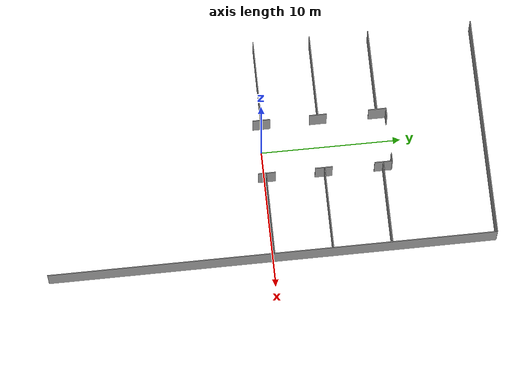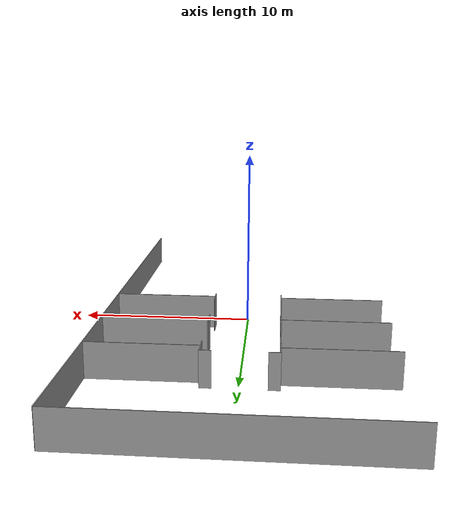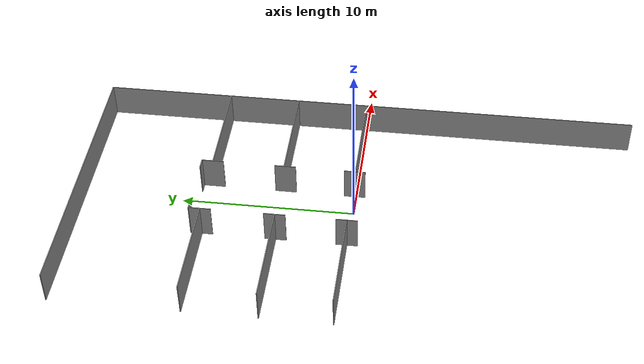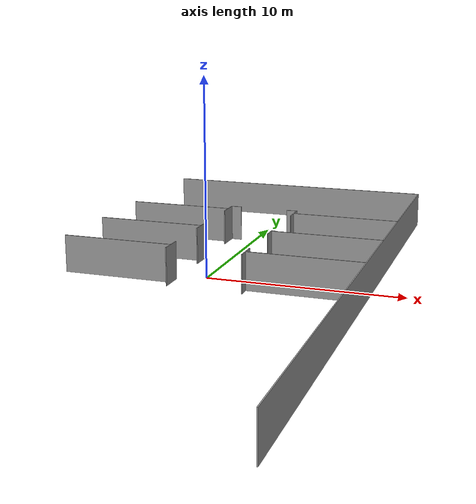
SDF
<sdf version="1.6">
 <model name="straight_corridor">
  <link name="link_0_clone_1_clone">
   <inertial>
    <mass>1.76422</mass>
    <inertia><ixx>41.0771</ixx><ixy>0</ixy><ixz>0</ixz><iyy>0.544921</iyy><iyz>0</iyz><izz>41.6211</izz></inertia>
   </inertial>
   <pose>8 0 0.5 0 1.57051 0</pose>
   <visual name="visual">
    <geometry><box><size>2 32 0.05</size></box></geometry>
    <material>
     <lighting>1</lighting>
     <script><uri>file://media/materials/scripts/gazebo.material</uri><name>Gazebo/Grey</name></script>
     <shader type="vertex"><normal_map>__default__</normal_map></shader>
     <ambient>0.3 0.3 0.3 1</ambient>
     <diffuse>0.7 0.7 0.7 1</diffuse>
     <specular>0.01 0.01 0.01 1</specular>
     <emissive>0 0 0 1</emissive>
    </material>
   </visual>
   <collision name="collision">
    <geometry><box><size>2 32 0.05</size></box></geometry>
    <surface>
     <friction>
      <ode><mu>1</mu><mu2>1</mu2><fdir1>0 0 0</fdir1><slip1>0</slip1><slip2>0</slip2></ode>
      <torsional>
       <coefficient>1</coefficient>
       <patch_radius>0</patch_radius>
       <surface_radius>0</surface_radius>
       <use_patch_radius>1</use_patch_radius>
       <ode><slip>0</slip></ode>
      </torsional>
     </friction>
     <bounce><restitution_coefficient>0</restitution_coefficient><threshold>1e+06</threshold></bounce>
     <contact>
      <collide_without_contact>0</collide_without_contact>
      <collide_without_contact_bitmask>1</collide_without_contact_bitmask>
      <collide_bitmask>1</collide_bitmask>
      <ode>
       <soft_cfm>0</soft_cfm>
       <soft_erp>0.2</soft_erp>
       <kp>1e+13</kp>
       <kd>1</kd>
       <max_vel>0.01</max_vel>
       <min_depth>0</min_depth>
      </ode>
      <bullet>
       <split_impulse>1</split_impulse>
       <split_impulse_penetration_threshold>-0.01</split_impulse_penetration_threshold>
       <soft_cfm>0</soft_cfm>
       <soft_erp>0.2</soft_erp>
       <kp>1e+13</kp>
       <kd>1</kd>
      </bullet>
     </contact>
    </surface>
   </collision>
  </link>
  <link name="link_0_clone_clone_clone_1">
   <inertial>
    <mass>0.172458</mass>
    <inertia>
     <ixx>0.0384152</ixx>
     <ixy>0</ixy>
     <ixz>0</ixz>
     <iyy>0.0532677</iyy>
     <iyz>0</iyz>
     <izz>0.0915919</izz>
    </inertia>
   </inertial>
   <pose>2 0.1777 0.5 0 1.57066 0</pose>
   <visual name="visual">
    <geometry><box><size>2 1.25 0.05</size></box></geometry>
    <material>
     <lighting>1</lighting>
     <script><uri>file://media/materials/scripts/gazebo.material</uri><name>Gazebo/Grey</name></script>
     <shader type="pixel"><normal_map>__default__</normal_map></shader>
     <ambient>0.3 0.3 0.3 1</ambient>
     <diffuse>0.7 0.7 0.7 1</diffuse>
     <specular>0.01 0.01 0.01 1</specular>
     <emissive>0 0 0 1</emissive>
    </material>
   </visual>
   <collision name="collision">
    <geometry><box><size>2 1.25 0.05</size></box></geometry>
    <surface>
     <friction>
      <ode><mu>1</mu><mu2>1</mu2><fdir1>0 0 0</fdir1><slip1>0</slip1><slip2>0</slip2></ode>
      <torsional>
       <coefficient>1</coefficient>
       <patch_radius>0</patch_radius>
       <surface_radius>0</surface_radius>
       <use_patch_radius>1</use_patch_radius>
       <ode><slip>0</slip></ode>
      </torsional>
     </friction>
     <bounce><restitution_coefficient>0</restitution_coefficient><threshold>1e+06</threshold></bounce>
     <contact>
      <collide_without_contact>0</collide_without_contact>
      <collide_without_contact_bitmask>1</collide_without_contact_bitmask>
      <collide_bitmask>1</collide_bitmask>
      <ode>
       <soft_cfm>0</soft_cfm>
       <soft_erp>0.2</soft_erp>
       <kp>1e+13</kp>
       <kd>1</kd>
       <max_vel>0.01</max_vel>
       <min_depth>0</min_depth>
      </ode>
      <bullet>
       <split_impulse>1</split_impulse>
       <split_impulse_penetration_threshold>-0.01</split_impulse_penetration_threshold>
       <soft_cfm>0</soft_cfm>
       <soft_erp>0.2</soft_erp>
       <kp>1e+13</kp>
       <kd>1</kd>
      </bullet>
     </contact>
    </surface>
   </collision>
  </link>
  <link name="link_0_clone_clone_clone_1_clone">
   <inertial>
    <mass>0.172458</mass>
    <inertia>
     <ixx>0.0384152</ixx>
     <ixy>0</ixy>
     <ixz>0</ixz>
     <iyy>0.0532677</iyy>
     <iyz>0</iyz>
     <izz>0.0915919</izz>
    </inertia>
   </inertial>
   <pose>-2 0.17777 0.5 0 1.57051 0</pose>
   <visual name="visual">
    <geometry><box><size>2 1.25 0.05</size></box></geometry>
    <material>
     <lighting>1</lighting>
     <script><uri>file://media/materials/scripts/gazebo.material</uri><name>Gazebo/Grey</name></script>
     <shader type="pixel"><normal_map>__default__</normal_map></shader>
     <ambient>0.3 0.3 0.3 1</ambient>
     <diffuse>0.7 0.7 0.7 1</diffuse>
     <specular>0.01 0.01 0.01 1</specular>
     <emissive>0 0 0 1</emissive>
    </material>
   </visual>
   <collision name="collision">
    <geometry><box><size>2 1.25 0.05</size></box></geometry>
    <surface>
     <friction>
      <ode><mu>1</mu><mu2>1</mu2><fdir1>0 0 0</fdir1><slip1>0</slip1><slip2>0</slip2></ode>
      <torsional>
       <coefficient>1</coefficient>
       <patch_radius>0</patch_radius>
       <surface_radius>0</surface_radius>
       <use_patch_radius>1</use_patch_radius>
       <ode><slip>0</slip></ode>
      </torsional>
     </friction>
     <bounce><restitution_coefficient>0</restitution_coefficient><threshold>1e+06</threshold></bounce>
     <contact>
      <collide_without_contact>0</collide_without_contact>
      <collide_without_contact_bitmask>1</collide_without_contact_bitmask>
      <collide_bitmask>1</collide_bitmask>
      <ode>
       <soft_cfm>0</soft_cfm>
       <soft_erp>0.2</soft_erp>
       <kp>1e+13</kp>
       <kd>1</kd>
       <max_vel>0.01</max_vel>
       <min_depth>0</min_depth>
      </ode>
      <bullet>
       <split_impulse>1</split_impulse>
       <split_impulse_penetration_threshold>-0.01</split_impulse_penetration_threshold>
       <soft_cfm>0</soft_cfm>
       <soft_erp>0.2</soft_erp>
       <kp>1e+13</kp>
       <kd>1</kd>
      </bullet>
     </contact>
    </surface>
   </collision>
  </link>
  <link name="link_0_clone_clone_clone_2">
   <inertial>
    <mass>0.172458</mass>
    <inertia>
     <ixx>0.0384152</ixx>
     <ixy>0</ixy>
     <ixz>0</ixz>
     <iyy>0.0532677</iyy>
     <iyz>0</iyz>
     <izz>0.0915919</izz>
    </inertia>
   </inertial>
   <pose>2 4.26 0.5 0 1.57066 0</pose>
   <visual name="visual">
    <geometry><box><size>2 1.25 0.05</size></box></geometry>
    <material>
     <lighting>1</lighting>
     <script><uri>file://media/materials/scripts/gazebo.material</uri><name>Gazebo/Grey</name></script>
     <shader type="pixel"><normal_map>__default__</normal_map></shader>
     <ambient>0.3 0.3 0.3 1</ambient>
     <diffuse>0.7 0.7 0.7 1</diffuse>
     <specular>0.01 0.01 0.01 1</specular>
     <emissive>0 0 0 1</emissive>
    </material>
   </visual>
   <collision name="collision">
    <geometry><box><size>2 1.25 0.05</size></box></geometry>
    <surface>
     <friction>
      <ode><mu>1</mu><mu2>1</mu2><fdir1>0 0 0</fdir1><slip1>0</slip1><slip2>0</slip2></ode>
      <torsional>
       <coefficient>1</coefficient>
       <patch_radius>0</patch_radius>
       <surface_radius>0</surface_radius>
       <use_patch_radius>1</use_patch_radius>
       <ode><slip>0</slip></ode>
      </torsional>
     </friction>
     <bounce><restitution_coefficient>0</restitution_coefficient><threshold>1e+06</threshold></bounce>
     <contact>
      <collide_without_contact>0</collide_without_contact>
      <collide_without_contact_bitmask>1</collide_without_contact_bitmask>
      <collide_bitmask>1</collide_bitmask>
      <ode>
       <soft_cfm>0</soft_cfm>
       <soft_erp>0.2</soft_erp>
       <kp>1e+13</kp>
       <kd>1</kd>
       <max_vel>0.01</max_vel>
       <min_depth>0</min_depth>
      </ode>
      <bullet>
       <split_impulse>1</split_impulse>
       <split_impulse_penetration_threshold>-0.01</split_impulse_penetration_threshold>
       <soft_cfm>0</soft_cfm>
       <soft_erp>0.2</soft_erp>
       <kp>1e+13</kp>
       <kd>1</kd>
      </bullet>
     </contact>
    </surface>
   </collision>
  </link>
  <link name="link_0_clone_clone_clone_2_clone">
   <inertial>
    <mass>0.172458</mass>
    <inertia>
     <ixx>0.0384152</ixx>
     <ixy>0</ixy>
     <ixz>0</ixz>
     <iyy>0.0532677</iyy>
     <iyz>0</iyz>
     <izz>0.0915919</izz>
    </inertia>
   </inertial>
   <pose>-2 4.26666 0.5 0 1.57051 0</pose>
   <visual name="visual">
    <geometry><box><size>2 1.25 0.05</size></box></geometry>
    <material>
     <lighting>1</lighting>
     <script><uri>file://media/materials/scripts/gazebo.material</uri><name>Gazebo/Grey</name></script>
     <shader type="pixel"><normal_map>__default__</normal_map></shader>
     <ambient>0.3 0.3 0.3 1</ambient>
     <diffuse>0.7 0.7 0.7 1</diffuse>
     <specular>0.01 0.01 0.01 1</specular>
     <emissive>0 0 0 1</emissive>
    </material>
   </visual>
   <collision name="collision">
    <geometry><box><size>2 1.25 0.05</size></box></geometry>
    <surface>
     <friction>
      <ode><mu>1</mu><mu2>1</mu2><fdir1>0 0 0</fdir1><slip1>0</slip1><slip2>0</slip2></ode>
      <torsional>
       <coefficient>1</coefficient>
       <patch_radius>0</patch_radius>
       <surface_radius>0</surface_radius>
       <use_patch_radius>1</use_patch_radius>
       <ode><slip>0</slip></ode>
      </torsional>
     </friction>
     <bounce><restitution_coefficient>0</restitution_coefficient><threshold>1e+06</threshold></bounce>
     <contact>
      <collide_without_contact>0</collide_without_contact>
      <collide_without_contact_bitmask>1</collide_without_contact_bitmask>
      <collide_bitmask>1</collide_bitmask>
      <ode>
       <soft_cfm>0</soft_cfm>
       <soft_erp>0.2</soft_erp>
       <kp>1e+13</kp>
       <kd>1</kd>
       <max_vel>0.01</max_vel>
       <min_depth>0</min_depth>
      </ode>
      <bullet>
       <split_impulse>1</split_impulse>
       <split_impulse_penetration_threshold>-0.01</split_impulse_penetration_threshold>
       <soft_cfm>0</soft_cfm>
       <soft_erp>0.2</soft_erp>
       <kp>1e+13</kp>
       <kd>1</kd>
      </bullet>
     </contact>
    </surface>
   </collision>
  </link>
  <link name="link_0_clone_clone_clone_3">
   <inertial>
    <mass>0.172458</mass>
    <inertia>
     <ixx>0.0384152</ixx>
     <ixy>0</ixy>
     <ixz>0</ixz>
     <iyy>0.0532677</iyy>
     <iyz>0</iyz>
     <izz>0.0915919</izz>
    </inertia>
   </inertial>
   <pose>2 8.53 0.5 0 1.57066 0</pose>
   <visual name="visual">
    <geometry><box><size>2 1.25 0.05</size></box></geometry>
    <material>
     <lighting>1</lighting>
     <script><uri>file://media/materials/scripts/gazebo.material</uri><name>Gazebo/Grey</name></script>
     <shader type="pixel"><normal_map>__default__</normal_map></shader>
     <ambient>0.3 0.3 0.3 1</ambient>
     <diffuse>0.7 0.7 0.7 1</diffuse>
     <specular>0.01 0.01 0.01 1</specular>
     <emissive>0 0 0 1</emissive>
    </material>
   </visual>
   <collision name="collision">
    <geometry><box><size>2 1.25 0.05</size></box></geometry>
    <surface>
     <friction>
      <ode><mu>1</mu><mu2>1</mu2><fdir1>0 0 0</fdir1><slip1>0</slip1><slip2>0</slip2></ode>
      <torsional>
       <coefficient>1</coefficient>
       <patch_radius>0</patch_radius>
       <surface_radius>0</surface_radius>
       <use_patch_radius>1</use_patch_radius>
       <ode><slip>0</slip></ode>
      </torsional>
     </friction>
     <bounce><restitution_coefficient>0</restitution_coefficient><threshold>1e+06</threshold></bounce>
     <contact>
      <collide_without_contact>0</collide_without_contact>
      <collide_without_contact_bitmask>1</collide_without_contact_bitmask>
      <collide_bitmask>1</collide_bitmask>
      <ode>
       <soft_cfm>0</soft_cfm>
       <soft_erp>0.2</soft_erp>
       <kp>1e+13</kp>
       <kd>1</kd>
       <max_vel>0.01</max_vel>
       <min_depth>0</min_depth>
      </ode>
      <bullet>
       <split_impulse>1</split_impulse>
       <split_impulse_penetration_threshold>-0.01</split_impulse_penetration_threshold>
       <soft_cfm>0</soft_cfm>
       <soft_erp>0.2</soft_erp>
       <kp>1e+13</kp>
       <kd>1</kd>
      </bullet>
     </contact>
    </surface>
   </collision>
  </link>
  <link name="link_0_clone_clone_clone_3_clone">
   <inertial>
    <mass>0.172458</mass>
    <inertia>
     <ixx>0.0384152</ixx>
     <ixy>0</ixy>
     <ixz>0</ixz>
     <iyy>0.0532677</iyy>
     <iyz>0</iyz>
     <izz>0.0915919</izz>
    </inertia>
   </inertial>
   <pose>-2 8.53 0.5 0 1.57051 0</pose>
   <visual name="visual">
    <geometry><box><size>2 1.25 0.05</size></box></geometry>
    <material>
     <lighting>1</lighting>
     <script><uri>file://media/materials/scripts/gazebo.material</uri><name>Gazebo/Grey</name></script>
     <shader type="pixel"><normal_map>__default__</normal_map></shader>
     <ambient>0.3 0.3 0.3 1</ambient>
     <diffuse>0.7 0.7 0.7 1</diffuse>
     <specular>0.01 0.01 0.01 1</specular>
     <emissive>0 0 0 1</emissive>
    </material>
   </visual>
   <collision name="collision">
    <geometry><box><size>2 1.25 0.05</size></box></geometry>
    <surface>
     <friction>
      <ode><mu>1</mu><mu2>1</mu2><fdir1>0 0 0</fdir1><slip1>0</slip1><slip2>0</slip2></ode>
      <torsional>
       <coefficient>1</coefficient>
       <patch_radius>0</patch_radius>
       <surface_radius>0</surface_radius>
       <use_patch_radius>1</use_patch_radius>
       <ode><slip>0</slip></ode>
      </torsional>
     </friction>
     <bounce><restitution_coefficient>0</restitution_coefficient><threshold>1e+06</threshold></bounce>
     <contact>
      <collide_without_contact>0</collide_without_contact>
      <collide_without_contact_bitmask>1</collide_without_contact_bitmask>
      <collide_bitmask>1</collide_bitmask>
      <ode>
       <soft_cfm>0</soft_cfm>
       <soft_erp>0.2</soft_erp>
       <kp>1e+13</kp>
       <kd>1</kd>
       <max_vel>0.01</max_vel>
       <min_depth>0</min_depth>
      </ode>
      <bullet>
       <split_impulse>1</split_impulse>
       <split_impulse_penetration_threshold>-0.01</split_impulse_penetration_threshold>
       <soft_cfm>0</soft_cfm>
       <soft_erp>0.2</soft_erp>
       <kp>1e+13</kp>
       <kd>1</kd>
      </bullet>
     </contact>
    </surface>
   </collision>
  </link>
  <link name="link_0_clone_clone_clone_4_clone_0">
   <inertial>
    <mass>0.172458</mass>
    <inertia>
     <ixx>0.0384152</ixx>
     <ixy>0</ixy>
     <ixz>0</ixz>
     <iyy>0.0532677</iyy>
     <iyz>0</iyz>
     <izz>0.0915919</izz>
    </inertia>
   </inertial>
   <pose>1.71515 9.17973 0.500215 -1.5708 1.57051 0</pose>
   <visual name="visual">
    <geometry><box><size>2 0.625 0.05</size></box></geometry>
    <material>
     <lighting>1</lighting>
     <script><uri>file://media/materials/scripts/gazebo.material</uri><name>Gazebo/Grey</name></script>
     <shader type="pixel"><normal_map>__default__</normal_map></shader>
     <ambient>0.3 0.3 0.3 1</ambient>
     <diffuse>0.7 0.7 0.7 1</diffuse>
     <specular>0.01 0.01 0.01 1</specular>
     <emissive>0 0 0 1</emissive>
    </material>
   </visual>
   <collision name="collision">
    <geometry><box><size>2 0.625 0.05</size></box></geometry>
    <surface>
     <friction>
      <ode><mu>1</mu><mu2>1</mu2><fdir1>0 0 0</fdir1><slip1>0</slip1><slip2>0</slip2></ode>
      <torsional>
       <coefficient>1</coefficient>
       <patch_radius>0</patch_radius>
       <surface_radius>0</surface_radius>
       <use_patch_radius>1</use_patch_radius>
       <ode><slip>0</slip></ode>
      </torsional>
     </friction>
     <bounce><restitution_coefficient>0</restitution_coefficient><threshold>1e+06</threshold></bounce>
     <contact>
      <collide_without_contact>0</collide_without_contact>
      <collide_without_contact_bitmask>1</collide_without_contact_bitmask>
      <collide_bitmask>1</collide_bitmask>
      <ode>
       <soft_cfm>0</soft_cfm>
       <soft_erp>0.2</soft_erp>
       <kp>1e+13</kp>
       <kd>1</kd>
       <max_vel>0.01</max_vel>
       <min_depth>0</min_depth>
      </ode>
      <bullet>
       <split_impulse>1</split_impulse>
       <split_impulse_penetration_threshold>-0.01</split_impulse_penetration_threshold>
       <soft_cfm>0</soft_cfm>
       <soft_erp>0.2</soft_erp>
       <kp>1e+13</kp>
       <kd>1</kd>
      </bullet>
     </contact>
    </surface>
   </collision>
  </link>
  <link name="link_0_clone_clone_clone_4_clone_clone">
   <inertial>
    <mass>0.172458</mass>
    <inertia>
     <ixx>0.0384152</ixx>
     <ixy>0</ixy>
     <ixz>0</ixz>
     <iyy>0.0532677</iyy>
     <iyz>0</iyz>
     <izz>0.0915919</izz>
    </inertia>
   </inertial>
   <pose>-1.71368 9.17676 0.499824 1.5708 1.57039 -0</pose>
   <visual name="visual">
    <geometry><box><size>2 0.625 0.05</size></box></geometry>
    <material>
     <lighting>1</lighting>
     <script><uri>file://media/materials/scripts/gazebo.material</uri><name>Gazebo/Grey</name></script>
     <shader type="pixel"><normal_map>__default__</normal_map></shader>
     <ambient>0.3 0.3 0.3 1</ambient>
     <diffuse>0.7 0.7 0.7 1</diffuse>
     <specular>0.01 0.01 0.01 1</specular>
     <emissive>0 0 0 1</emissive>
    </material>
   </visual>
   <collision name="collision">
    <geometry><box><size>2 0.625 0.05</size></box></geometry>
    <surface>
     <friction>
      <ode><mu>1</mu><mu2>1</mu2><fdir1>0 0 0</fdir1><slip1>0</slip1><slip2>0</slip2></ode>
      <torsional>
       <coefficient>1</coefficient>
       <patch_radius>0</patch_radius>
       <surface_radius>0</surface_radius>
       <use_patch_radius>1</use_patch_radius>
       <ode><slip>0</slip></ode>
      </torsional>
     </friction>
     <bounce><restitution_coefficient>0</restitution_coefficient><threshold>1e+06</threshold></bounce>
     <contact>
      <collide_without_contact>0</collide_without_contact>
      <collide_without_contact_bitmask>1</collide_without_contact_bitmask>
      <collide_bitmask>1</collide_bitmask>
      <ode>
       <soft_cfm>0</soft_cfm>
       <soft_erp>0.2</soft_erp>
       <kp>1e+13</kp>
       <kd>1</kd>
       <max_vel>0.01</max_vel>
       <min_depth>0</min_depth>
      </ode>
      <bullet>
       <split_impulse>1</split_impulse>
       <split_impulse_penetration_threshold>-0.01</split_impulse_penetration_threshold>
       <soft_cfm>0</soft_cfm>
       <soft_erp>0.2</soft_erp>
       <kp>1e+13</kp>
       <kd>1</kd>
      </bullet>
     </contact>
    </surface>
   </collision>
  </link>
  <link name="link_0_clone_clone_clone_clone">
   <inertial>
    <mass>1.76422</mass>
    <inertia><ixx>41.0771</ixx><ixy>0</ixy><ixz>0</ixz><iyy>0.544921</iyy><iyz>0</iyz><izz>41.6211</izz></inertia>
   </inertial>
   <pose>0 16 0.5 -1.58027 1.57079 3.13212</pose>
   <visual name="visual">
    <geometry><box><size>2 16 0.05</size></box></geometry>
    <material>
     <lighting>1</lighting>
     <script><uri>file://media/materials/scripts/gazebo.material</uri><name>Gazebo/Grey</name></script>
     <shader type="pixel"><normal_map>__default__</normal_map></shader>
     <ambient>0.3 0.3 0.3 1</ambient>
     <diffuse>0.7 0.7 0.7 1</diffuse>
     <specular>0.01 0.01 0.01 1</specular>
     <emissive>0 0 0 1</emissive>
    </material>
   </visual>
   <collision name="collision">
    <geometry><box><size>2 16 0.05</size></box></geometry>
    <surface>
     <friction>
      <ode><mu>1</mu><mu2>1</mu2><fdir1>0 0 0</fdir1><slip1>0</slip1><slip2>0</slip2></ode>
      <torsional>
       <coefficient>1</coefficient>
       <patch_radius>0</patch_radius>
       <surface_radius>0</surface_radius>
       <use_patch_radius>1</use_patch_radius>
       <ode><slip>0</slip></ode>
      </torsional>
     </friction>
     <bounce><restitution_coefficient>0</restitution_coefficient><threshold>1e+06</threshold></bounce>
     <contact>
      <collide_without_contact>0</collide_without_contact>
      <collide_without_contact_bitmask>1</collide_without_contact_bitmask>
      <collide_bitmask>1</collide_bitmask>
      <ode>
       <soft_cfm>0</soft_cfm>
       <soft_erp>0.2</soft_erp>
       <kp>1e+13</kp>
       <kd>1</kd>
       <max_vel>0.01</max_vel>
       <min_depth>0</min_depth>
      </ode>
      <bullet>
       <split_impulse>1</split_impulse>
       <split_impulse_penetration_threshold>-0.01</split_impulse_penetration_threshold>
       <soft_cfm>0</soft_cfm>
       <soft_erp>0.2</soft_erp>
       <kp>1e+13</kp>
       <kd>1</kd>
      </bullet>
     </contact>
    </surface>
   </collision>
  </link>
  <link name="link_0_clone_clone_clone_clone_clone">
   <inertial>
    <mass>1.76422</mass>
    <inertia><ixx>41.0771</ixx><ixy>0</ixy><ixz>0</ixz><iyy>0.544921</iyy><iyz>0</iyz><izz>41.6211</izz></inertia>
   </inertial>
   <pose>5 8.5333 0.5 1.57123 1.57066 0.000437</pose>
   <visual name="visual">
    <geometry><box><size>2 6 0.05</size></box></geometry>
    <material>
     <lighting>1</lighting>
     <script><uri>file://media/materials/scripts/gazebo.material</uri><name>Gazebo/Grey</name></script>
     <shader type="pixel"><normal_map>__default__</normal_map></shader>
     <ambient>0.3 0.3 0.3 1</ambient>
     <diffuse>0.7 0.7 0.7 1</diffuse>
     <specular>0.01 0.01 0.01 1</specular>
     <emissive>0 0 0 1</emissive>
    </material>
   </visual>
   <collision name="collision">
    <geometry><box><size>2 6 0.05</size></box></geometry>
    <surface>
     <friction>
      <ode><mu>1</mu><mu2>1</mu2><fdir1>0 0 0</fdir1><slip1>0</slip1><slip2>0</slip2></ode>
      <torsional>
       <coefficient>1</coefficient>
       <patch_radius>0</patch_radius>
       <surface_radius>0</surface_radius>
       <use_patch_radius>1</use_patch_radius>
       <ode><slip>0</slip></ode>
      </torsional>
     </friction>
     <bounce><restitution_coefficient>0</restitution_coefficient><threshold>1e+06</threshold></bounce>
     <contact>
      <collide_without_contact>0</collide_without_contact>
      <collide_without_contact_bitmask>1</collide_without_contact_bitmask>
      <collide_bitmask>1</collide_bitmask>
      <ode>
       <soft_cfm>0</soft_cfm>
       <soft_erp>0.2</soft_erp>
       <kp>1e+13</kp>
       <kd>1</kd>
       <max_vel>0.01</max_vel>
       <min_depth>0</min_depth>
      </ode>
      <bullet>
       <split_impulse>1</split_impulse>
       <split_impulse_penetration_threshold>-0.01</split_impulse_penetration_threshold>
       <soft_cfm>0</soft_cfm>
       <soft_erp>0.2</soft_erp>
       <kp>1e+13</kp>
       <kd>1</kd>
      </bullet>
     </contact>
    </surface>
   </collision>
  </link>
  <link name="link_0_clone_clone_clone_clone_clone_clone">
   <inertial>
    <mass>1.76422</mass>
    <inertia><ixx>41.0771</ixx><ixy>0</ixy><ixz>0</ixz><iyy>0.544921</iyy><iyz>0</iyz><izz>41.6211</izz></inertia>
   </inertial>
   <pose>5.01936 4.32473 0.500737 1.57111 1.57051 0.000316</pose>
   <visual name="visual">
    <geometry><box><size>2 6 0.05</size></box></geometry>
    <material>
     <lighting>1</lighting>
     <script><uri>file://media/materials/scripts/gazebo.material</uri><name>Gazebo/Grey</name></script>
     <shader type="pixel"><normal_map>__default__</normal_map></shader>
     <ambient>0.3 0.3 0.3 1</ambient>
     <diffuse>0.7 0.7 0.7 1</diffuse>
     <specular>0.01 0.01 0.01 1</specular>
     <emissive>0 0 0 1</emissive>
    </material>
   </visual>
   <collision name="collision">
    <geometry><box><size>2 6 0.05</size></box></geometry>
    <surface>
     <friction>
      <ode><mu>1</mu><mu2>1</mu2><fdir1>0 0 0</fdir1><slip1>0</slip1><slip2>0</slip2></ode>
      <torsional>
       <coefficient>1</coefficient>
       <patch_radius>0</patch_radius>
       <surface_radius>0</surface_radius>
       <use_patch_radius>1</use_patch_radius>
       <ode><slip>0</slip></ode>
      </torsional>
     </friction>
     <bounce><restitution_coefficient>0</restitution_coefficient><threshold>1e+06</threshold></bounce>
     <contact>
      <collide_without_contact>0</collide_without_contact>
      <collide_without_contact_bitmask>1</collide_without_contact_bitmask>
      <collide_bitmask>1</collide_bitmask>
      <ode>
       <soft_cfm>0</soft_cfm>
       <soft_erp>0.2</soft_erp>
       <kp>1e+13</kp>
       <kd>1</kd>
       <max_vel>0.01</max_vel>
       <min_depth>0</min_depth>
      </ode>
      <bullet>
       <split_impulse>1</split_impulse>
       <split_impulse_penetration_threshold>-0.01</split_impulse_penetration_threshold>
       <soft_cfm>0</soft_cfm>
       <soft_erp>0.2</soft_erp>
       <kp>1e+13</kp>
       <kd>1</kd>
      </bullet>
     </contact>
    </surface>
   </collision>
  </link>
  <link name="link_0_clone_clone_clone_clone_clone_clone_clone">
   <inertial>
    <mass>1.76422</mass>
    <inertia><ixx>41.0771</ixx><ixy>0</ixy><ixz>0</ixz><iyy>0.544921</iyy><iyz>0</iyz><izz>41.6211</izz></inertia>
   </inertial>
   <pose>4.99382 0.13121 0.501471 1.57093 1.57037 0.000141</pose>
   <visual name="visual">
    <geometry><box><size>2 6 0.05</size></box></geometry>
    <material>
     <lighting>1</lighting>
     <script><uri>file://media/materials/scripts/gazebo.material</uri><name>Gazebo/Grey</name></script>
     <shader type="pixel"><normal_map>__default__</normal_map></shader>
     <ambient>0.3 0.3 0.3 1</ambient>
     <diffuse>0.7 0.7 0.7 1</diffuse>
     <specular>0.01 0.01 0.01 1</specular>
     <emissive>0 0 0 1</emissive>
    </material>
   </visual>
   <collision name="collision">
    <geometry><box><size>2 6 0.05</size></box></geometry>
    <surface>
     <friction>
      <ode><mu>1</mu><mu2>1</mu2><fdir1>0 0 0</fdir1><slip1>0</slip1><slip2>0</slip2></ode>
      <torsional>
       <coefficient>1</coefficient>
       <patch_radius>0</patch_radius>
       <surface_radius>0</surface_radius>
       <use_patch_radius>1</use_patch_radius>
       <ode><slip>0</slip></ode>
      </torsional>
     </friction>
     <bounce><restitution_coefficient>0</restitution_coefficient><threshold>1e+06</threshold></bounce>
     <contact>
      <collide_without_contact>0</collide_without_contact>
      <collide_without_contact_bitmask>1</collide_without_contact_bitmask>
      <collide_bitmask>1</collide_bitmask>
      <ode>
       <soft_cfm>0</soft_cfm>
       <soft_erp>0.2</soft_erp>
       <kp>1e+13</kp>
       <kd>1</kd>
       <max_vel>0.01</max_vel>
       <min_depth>0</min_depth>
      </ode>
      <bullet>
       <split_impulse>1</split_impulse>
       <split_impulse_penetration_threshold>-0.01</split_impulse_penetration_threshold>
       <soft_cfm>0</soft_cfm>
       <soft_erp>0.2</soft_erp>
       <kp>1e+13</kp>
       <kd>1</kd>
      </bullet>
     </contact>
    </surface>
   </collision>
  </link>
  <link name="link_0_clone_clone_clone_clone_clone_clone_clone_6">
   <inertial>
    <mass>1.76422</mass>
    <inertia><ixx>41.0771</ixx><ixy>0</ixy><ixz>0</ixz><iyy>0.544921</iyy><iyz>0</iyz><izz>41.6211</izz></inertia>
   </inertial>
   <pose>-5 0.17777 0.500002 1.571 1.57037 0.000212</pose>
   <visual name="visual">
    <geometry><box><size>2 6 0.05</size></box></geometry>
    <material>
     <lighting>1</lighting>
     <script><uri>file://media/materials/scripts/gazebo.material</uri><name>Gazebo/Grey</name></script>
     <shader type="pixel"><normal_map>__default__</normal_map></shader>
     <ambient>0.3 0.3 0.3 1</ambient>
     <diffuse>0.7 0.7 0.7 1</diffuse>
     <specular>0.01 0.01 0.01 1</specular>
     <emissive>0 0 0 1</emissive>
    </material>
   </visual>
   <collision name="collision">
    <geometry><box><size>2 6 0.05</size></box></geometry>
    <surface>
     <friction>
      <ode><mu>1</mu><mu2>1</mu2><fdir1>0 0 0</fdir1><slip1>0</slip1><slip2>0</slip2></ode>
      <torsional>
       <coefficient>1</coefficient>
       <patch_radius>0</patch_radius>
       <surface_radius>0</surface_radius>
       <use_patch_radius>1</use_patch_radius>
       <ode><slip>0</slip></ode>
      </torsional>
     </friction>
     <bounce><restitution_coefficient>0</restitution_coefficient><threshold>1e+06</threshold></bounce>
     <contact>
      <collide_without_contact>0</collide_without_contact>
      <collide_without_contact_bitmask>1</collide_without_contact_bitmask>
      <collide_bitmask>1</collide_bitmask>
      <ode>
       <soft_cfm>0</soft_cfm>
       <soft_erp>0.2</soft_erp>
       <kp>1e+13</kp>
       <kd>1</kd>
       <max_vel>0.01</max_vel>
       <min_depth>0</min_depth>
      </ode>
      <bullet>
       <split_impulse>1</split_impulse>
       <split_impulse_penetration_threshold>-0.01</split_impulse_penetration_threshold>
       <soft_cfm>0</soft_cfm>
       <soft_erp>0.2</soft_erp>
       <kp>1e+13</kp>
       <kd>1</kd>
      </bullet>
     </contact>
    </surface>
   </collision>
  </link>
  <link name="link_0_clone_clone_clone_clone_clone_clone_clone_7">
   <inertial>
    <mass>1.76422</mass>
    <inertia><ixx>41.0771</ixx><ixy>0</ixy><ixz>0</ixz><iyy>0.544921</iyy><iyz>0</iyz><izz>41.6211</izz></inertia>
   </inertial>
   <pose>-5 4.2666 0.500006 1.571 1.57037 0.000212</pose>
   <visual name="visual">
    <geometry><box><size>2 6 0.05</size></box></geometry>
    <material>
     <lighting>1</lighting>
     <script><uri>file://media/materials/scripts/gazebo.material</uri><name>Gazebo/Grey</name></script>
     <shader type="pixel"><normal_map>__default__</normal_map></shader>
     <ambient>0.3 0.3 0.3 1</ambient>
     <diffuse>0.7 0.7 0.7 1</diffuse>
     <specular>0.01 0.01 0.01 1</specular>
     <emissive>0 0 0 1</emissive>
    </material>
   </visual>
   <collision name="collision">
    <geometry><box><size>2 6 0.05</size></box></geometry>
    <surface>
     <friction>
      <ode><mu>1</mu><mu2>1</mu2><fdir1>0 0 0</fdir1><slip1>0</slip1><slip2>0</slip2></ode>
      <torsional>
       <coefficient>1</coefficient>
       <patch_radius>0</patch_radius>
       <surface_radius>0</surface_radius>
       <use_patch_radius>1</use_patch_radius>
       <ode><slip>0</slip></ode>
      </torsional>
     </friction>
     <bounce><restitution_coefficient>0</restitution_coefficient><threshold>1e+06</threshold></bounce>
     <contact>
      <collide_without_contact>0</collide_without_contact>
      <collide_without_contact_bitmask>1</collide_without_contact_bitmask>
      <collide_bitmask>1</collide_bitmask>
      <ode>
       <soft_cfm>0</soft_cfm>
       <soft_erp>0.2</soft_erp>
       <kp>1e+13</kp>
       <kd>1</kd>
       <max_vel>0.01</max_vel>
       <min_depth>0</min_depth>
      </ode>
      <bullet>
       <split_impulse>1</split_impulse>
       <split_impulse_penetration_threshold>-0.01</split_impulse_penetration_threshold>
       <soft_cfm>0</soft_cfm>
       <soft_erp>0.2</soft_erp>
       <kp>1e+13</kp>
       <kd>1</kd>
      </bullet>
     </contact>
    </surface>
   </collision>
  </link>
  <link name="link_0_clone_clone_clone_clone_clone_clone_clone_8">
   <inertial>
    <mass>1.76422</mass>
    <inertia><ixx>41.0771</ixx><ixy>0</ixy><ixz>0</ixz><iyy>0.544921</iyy><iyz>0</iyz><izz>41.6211</izz></inertia>
   </inertial>
   <pose>-5 8.53 0.5 1.571 1.57037 0.000212</pose>
   <visual name="visual">
    <geometry><box><size>2 6 0.05</size></box></geometry>
    <material>
     <lighting>1</lighting>
     <script><uri>file://media/materials/scripts/gazebo.material</uri><name>Gazebo/Grey</name></script>
     <shader type="pixel"><normal_map>__default__</normal_map></shader>
     <ambient>0.3 0.3 0.3 1</ambient>
     <diffuse>0.7 0.7 0.7 1</diffuse>
     <specular>0.01 0.01 0.01 1</specular>
     <emissive>0 0 0 1</emissive>
    </material>
   </visual>
   <collision name="collision">
    <geometry><box><size>2 6 0.05</size></box></geometry>
    <surface>
     <friction>
      <ode><mu>1</mu><mu2>1</mu2><fdir1>0 0 0</fdir1><slip1>0</slip1><slip2>0</slip2></ode>
      <torsional>
       <coefficient>1</coefficient>
       <patch_radius>0</patch_radius>
       <surface_radius>0</surface_radius>
       <use_patch_radius>1</use_patch_radius>
       <ode><slip>0</slip></ode>
      </torsional>
     </friction>
     <bounce><restitution_coefficient>0</restitution_coefficient><threshold>1e+06</threshold></bounce>
     <contact>
      <collide_without_contact>0</collide_without_contact>
      <collide_without_contact_bitmask>1</collide_without_contact_bitmask>
      <collide_bitmask>1</collide_bitmask>
      <ode>
       <soft_cfm>0</soft_cfm>
       <soft_erp>0.2</soft_erp>
       <kp>1e+13</kp>
       <kd>1</kd>
       <max_vel>0.01</max_vel>
       <min_depth>0</min_depth>
      </ode>
      <bullet>
       <split_impulse>1</split_impulse>
       <split_impulse_penetration_threshold>-0.01</split_impulse_penetration_threshold>
       <soft_cfm>0</soft_cfm>
       <soft_erp>0.2</soft_erp>
       <kp>1e+13</kp>
       <kd>1</kd>
      </bullet>
     </contact>
    </surface>
   </collision>
  </link>
  <static>0</static>
 </model>
</sdf>
